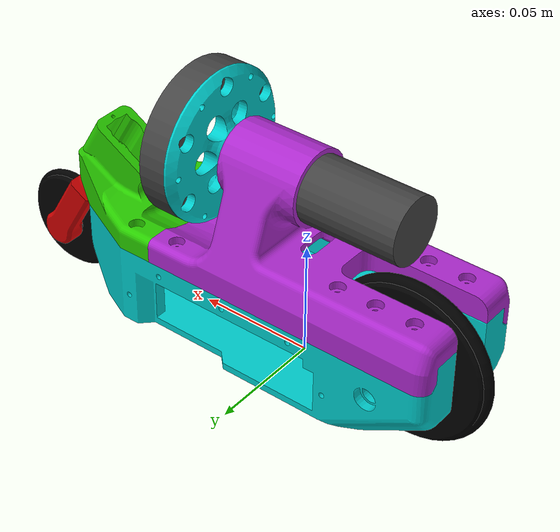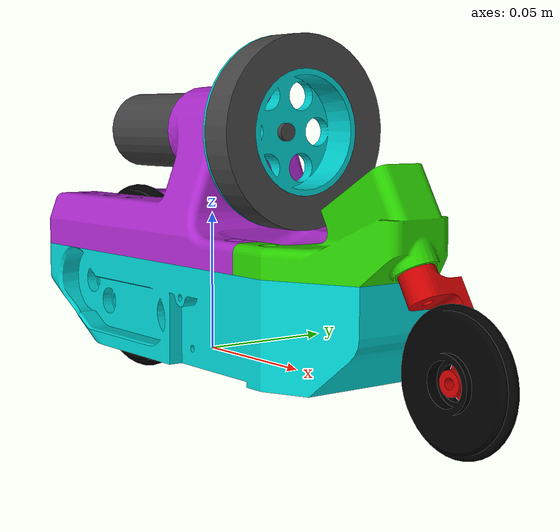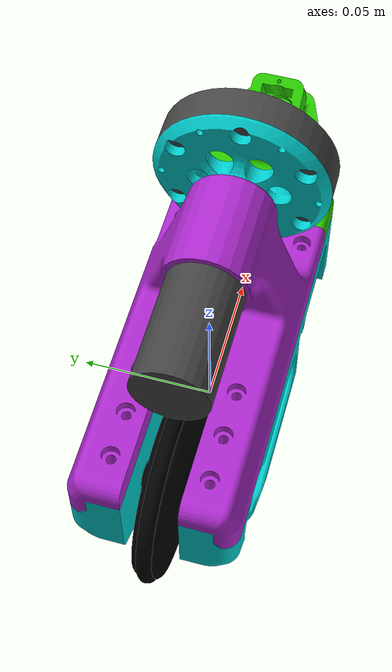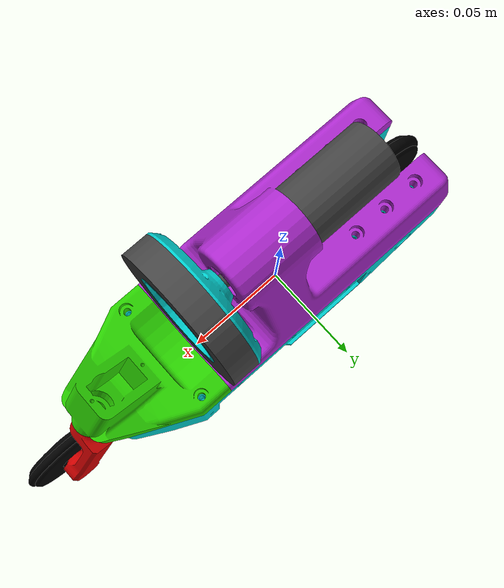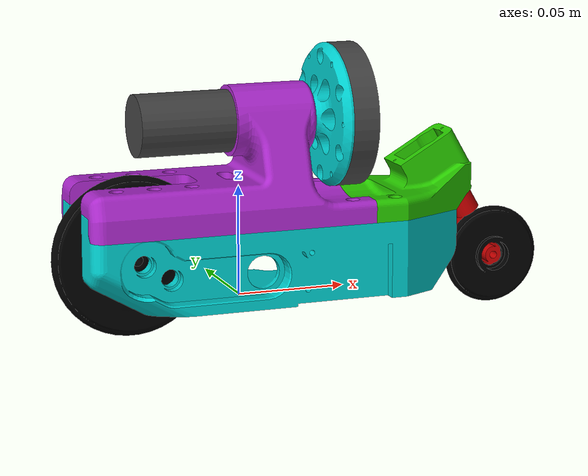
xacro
<?xml version="1.0"?>
<robot name="obike" xmlns:xacro="http://ros.org/wiki/xacro">
    <xacro:macro name="inertial_box" params="size rho:=1000 xyz:='0 0 0' rpy:='0 0 0'">
		<xacro:property name="w" value="${size.split()[0]}"/>
		<xacro:property name="d" value="${size.split()[1]}"/>
		<xacro:property name="h" value="${size.split()[2]}"/>
		<xacro:property name="mass" value="${rho*w*d*h}"/>
		<inertial>
			<origin xyz="${xyz}" rpy="${rpy}"/>
			<mass value="${mass}"/>
			<inertia ixx="${(mass/12)*(h**2 + d**2)}" iyy="${(mass/12)*(w**2 + h**2)}" izz="${(mass/12)*(w**2 + d**2)}" ixy="0" ixz="0" iyz="0"/>
		</inertial>
	</xacro:macro>
	<xacro:macro name="inertial_cylinder" params="length radius rho:=1000 xyz:='0 0 0' rpy:='0 0 0'">
		<xacro:property name="mass" value="${rho*pi*length*radius**2}"/>
		<inertial>
			<origin xyz="${xyz}" rpy="${rpy}"/>
			<mass value="${mass}"/>
			<inertia ixx="${(mass/12)*(3*radius**2 + length**2)}" iyy="${(mass/12)*(3*radius**2 + length**2)}" izz="${(mass/2)*radius**2}" ixy="0" ixz="0" iyz="0"/>
		</inertial>
	</xacro:macro>
	<xacro:macro name="inertial_sphere" params="radius rho:=1000 xyz:='0 0 0' rpy:='0 0 0'">
		<xacro:property name="mass" value="${4/3*rho*pi*radius**3}"/>
		<inertial>
			<origin xyz="${xyz}" rpy="${rpy}"/>
			<mass value="${mass}"/>
			<inertia ixx="${(2/5*mass)*(radius**2)}" iyy="${(2/5*mass)*(radius**2)}" izz="${(2/5*mass)*(radius**2)}" ixy="0" ixz="0" iyz="0"/>
		</inertial>
	</xacro:macro>
	<xacro:macro name="collision_cylinder" params="length radius xyz:='0 0 0' rpy:='0 0 0'">
		<collision>
			<origin xyz="${xyz}" rpy="${rpy}"/>
			<geometry>
				<cylinder length="${length}" radius="${radius}"/>
			</geometry>
		</collision>
	</xacro:macro>
	<xacro:macro name="collision_capsule" params="length radius xyz:='0 0 0' rpy:='0 0 0'">
		<collision>
			<origin xyz="${xyz}" rpy="${rpy}"/>
			<geometry>
				<capsule length="${length}" radius="${radius}"/>
			</geometry>
		</collision>
	</xacro:macro>
	<xacro:macro name="collision_box" params="size xyz:='0 0 0' rpy:='0 0 0'">
		<collision>
			<origin xyz="${xyz}" rpy="${rpy}"/>
			<geometry>
				<box size="${size}"/>
			</geometry>
		</collision>
	</xacro:macro>
	<xacro:macro name="collision_sphere" params="radius xyz:='0 0 0' rpy:='0 0 0'">
		<collision>
			<origin xyz="${xyz}" rpy="${rpy}"/>
			<geometry>
				<sphere radius="${radius}"/>
			</geometry>
		</collision>
	</xacro:macro>
	<xacro:macro name="inertial_manual" params="mass xyz:='0 0 0' rpy:='0 0 0' ixx iyy izz iyz ixz ixy">
		<inertial>
			<origin xyz="${xyz}" rpy="${rpy}"/>
			<mass value="${mass}"/>
			<inertia ixx="${ixx}" iyy="${iyy}" izz="${izz}" iyz="${iyz}" ixz="${ixz}" ixy="${ixy}"/>
		</inertial>
	</xacro:macro>

	<link name="chassic">
		<visual>
			<geometry>
				<mesh filename="package://meshes/chassic.dae" scale="1 1 1"/>
			</geometry>
		</visual>
		<xacro:inertial_manual mass="0.288" xyz="0.0047367 -0.00165617 0.0191097" ixx="3.80011e-05" iyy="8.50835e-05" izz="9.50647e-05" iyz="-1.16837e-11" ixz="-6.35148e-06" ixy="-3.93988e-11"/>
		<collision>
			<geometry>
				<mesh filename="package://meshes/chassic.dae" scale="1 1 1"/>
			</geometry>
		</collision>
	</link>

	<link name="motor_mount">
		<visual>
			<geometry>
				<mesh filename="package://meshes/motor_mount.dae" scale="1 1 1"/>
			</geometry>
		</visual>
		<xacro:inertial_manual mass="0.067" xyz="0.00311605 -2.39414e-08 -0.0261504" ixx="3.80011e-05" iyy="8.50835e-05" izz="9.50647e-05" iyz="-1.16837e-11" ixz="-6.35148e-06" ixy="-3.93988e-11"/>
	</link>

	<joint name="motor_mount_joint" type="fixed">
		<origin xyz="-0.005 0 0.08" rpy="0 0 0"/>
		<parent link="chassic"/>
		<child link="motor_mount"/>
	</joint>

	<link name="front_chassic">
		<visual>
			<geometry>
				<mesh filename="package://meshes/front_chassic.dae" scale="1 1 1"/>
			</geometry>
		</visual>
		<xacro:inertial_manual mass="0.0298" xyz="0.0277492 1.38661e-08 0.00859761" ixx="7.21055e-06" iyy="8.02622e-06" izz="1.19714e-05" iyz="-4.42397e-13" ixz="-1.61329e-06" ixy="5.32121e-12"/>
	</link>

	<joint name="front_chassic_joint" type="fixed">
		<origin xyz="0.055 0 0.035" rpy="0 0 0"/>
		<parent link="chassic"/>
		<child link="front_chassic"/>
	</joint>

	<link name="front_wheel_arm">
		<visual>
			<geometry>
				<mesh filename="package://meshes/front_wheel_arm.dae" scale="1 1 1"/>
			</geometry>
		</visual>
		<xacro:inertial_manual mass="0.0043" xyz="-6.32629e-08 0.00613173 0.0206668" ixx="8.4523e-07" iyy="7.98604e-07" izz="1.47325e-07" iyz="-9.6622e-08" ixz="3.80111e-12" ixy="-2.0208e-12"/>

	</link>

	<joint name="front_wheel_arm_joint" type="continuous">
		<origin xyz="0.107304 0 0.03901" rpy="0 ${5*pi/6} 0"/>
		<axis xyz="0 0 1"/>
		<parent link="chassic"/>
		<child link="front_wheel_arm"/>
	</joint>

	<link name="front_wheel">
		<visual>
			<geometry>
				<mesh filename="package://meshes/front_wheel.dae" scale="1 1 1"/>
			</geometry>
		</visual>
		<xacro:inertial_manual mass="0.0116" xyz="-9.22528e-13 -2.05375e-07 -0.000101895" ixx="1.52351e-06" iyy="1.52351e-06" izz="2.95246e-06" iyz="2.01001e-13" ixz="1.55876e-17" ixy="1.10854e-16"/>
		<collision>
			<geometry>
				<mesh filename="package://meshes/front_wheel.dae" scale="1 1 1"/>
			</geometry>
		</collision>
	</link>

	<joint name="front_wheel_joint" type="continuous">
		<origin xyz="0 0 0.035" rpy="${-pi/2} 0 0"/>
		<axis xyz="0 0 1"/>
		<parent link="front_wheel_arm"/>
		<child link="front_wheel"/>
	</joint>

	<link name="faulhaber">
		<visual>
			<geometry>
				<mesh filename="package://meshes/faulhaber.dae" scale="1 1 1"/>
			</geometry>
		</visual>
		<xacro:inertial_manual mass="0.213" xyz="4.82201e-09 -1.77912e-19 -0.0074239" ixx="0.000114919" iyy="0.000114919" izz="1.81057e-05" iyz="-9.40735e-22" ixz="1.44574e-11" ixy="3.73504e-22"/>

	</link>

	<joint name="faulhaber_joint" type="fixed">
		<origin xyz="0 0 0" rpy="0 ${pi/2} 0"/>
		<parent link="motor_mount"/>
		<child link="faulhaber"/>
	</joint>

	<link name="reaction_wheel">
		<visual>
			<geometry>
				<mesh filename="package://meshes/reaction_wheel.dae" scale="1 1 1"/>
			</geometry>
		</visual>
	</link>

	<joint name="reaction_wheel_joint" type="continuous">
		<origin xyz="0.044 0 0" rpy="0 ${pi/2} 0"/>
		<axis xyz="0 0 1"/>
		<parent link="motor_mount"/>
		<child link="reaction_wheel"/>
	</joint>

	<link name="reaction_wheel_steel">
		<visual>
			<geometry>
				<mesh filename="package://meshes/reaction_wheel_steel.dae" scale="1 1 1"/>
			</geometry>
		</visual>
		<xacro:inertial_manual mass="0.198" xyz="2.36685e-08 1.97235e-06 0.00337371" ixx="4.07098e-06" iyy="4.07082e-06" izz="7.53616e-06" iyz="1.64823e-10" ixz="1.77889e-12" ixy="-5.26622e-13"/>
		<xacro:collision_cylinder length="0.012" radius="0.0325"/>
	</link>

	<joint name="reaction_wheel_steel_joint" type="fixed">
		<origin xyz="0 0 0.004" rpy="0 0 0"/>
		<parent link="reaction_wheel"/>
		<child link="reaction_wheel_steel"/>
	</joint>

	<link name="rear_wheel">
		<visual>
			<geometry>
				<mesh filename="package://meshes/rear_wheel.dae" scale="1 1 1"/>
			</geometry>
		</visual>
		<xacro:inertial_manual mass="0.0273" xyz="8.66222e-10 -2.46799e-07 -5.02853e-06" ixx="7.92469e-06" iyy="7.92468e-06" izz="1.53136e-05" iyz="1.27201e-13" ixz="-1.10104e-16" ixy="-1.1825e-17"/>
		<collision>
			<geometry>
				<mesh filename="package://meshes/rear_wheel.dae" scale="1 1 1"/>
			</geometry>
		</collision>
	</link>

	<joint name="rear_wheel_joint" type="continuous">
		<origin xyz="-0.05 0 0.022" rpy="${pi/2} 0 0"/>
		<axis xyz="0 0 1"/>
		<parent link="chassic"/>
		<child link="rear_wheel"/>
	</joint>

</robot>
